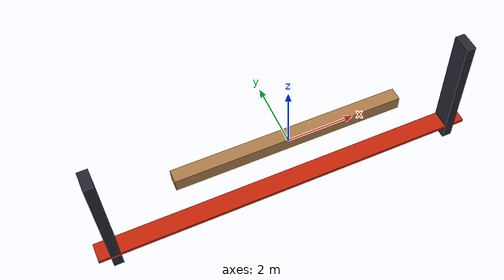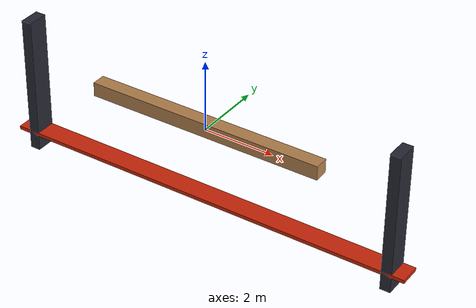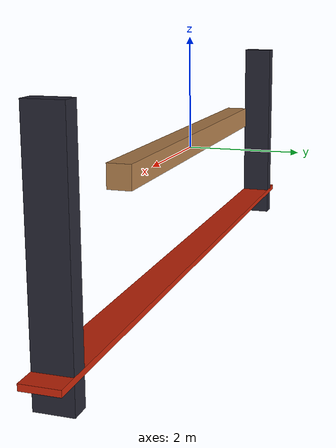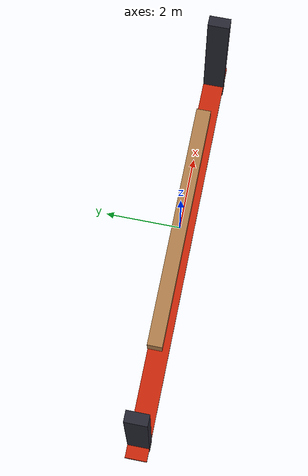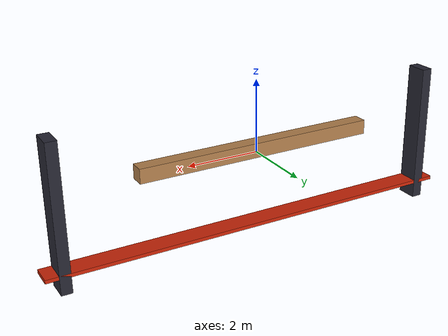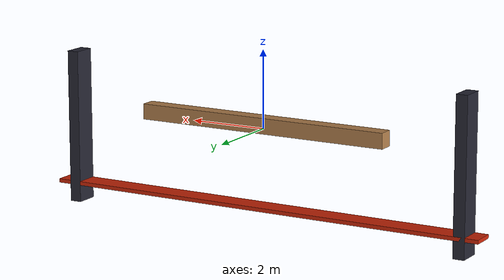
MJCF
<?xml version="1.0" encoding="UTF-8"?>
<mujoco model="unimal_sumo_env_2d_sf_clean">
  <compiler angle="radian"/>
  <option gravity="0 0 -9.81"/>

  <!-- =============== ASSETS =============== -->
  <asset>
    <!-- 2D-style sky: procedural gradient (no photo) -->
    <texture name="sky_2d" type="skybox"
             builtin="gradient" width="1024"
             rgb1="0.08 0.08 0.12"
             rgb2="0.18 0.18 0.28"
             mark="none"/>

    <!-- Stage wood (kept, but flattened via material) -->
    <texture  name="wood_tex" type="2d" file="assets/textures/wood/WoodFloor043.png"/>
    <material name="stage_floor" texture="wood_tex" texrepeat="10 1" texuniform="true"
              emission="0.05" specular="0" shininess="0" reflectance="0"/>

    <!-- Lava floor material (glowing orange/red) -->
    <texture name="lava_tex" type="2d" builtin="checker" width="64" height="64"
             rgb1="0.9 0.2 0.05" rgb2="0.7 0.1 0.02"/>
    <material name="lava_mat" texture="lava_tex" texrepeat="8 2" emission="0.8"
              specular="0" shininess="0" reflectance="0.1"/>

    <!-- Side walls material (dark, non-reflective) -->
    <material name="wall_mat" rgba="0.15 0.15 0.2 1.0" emission="0.02"
              specular="0" shininess="0" reflectance="0"/>

    <!-- Banner (self-lit) -->
    <texture  name="banner_tex" type="2d" file="assets/textures/fight_banner.png"/>
    <material name="banner_neon" texture="banner_tex" emission="1.35" specular="0" shininess="0"/>
  </asset>

  <!-- =============== VISUALS =============== -->
  <visual>
    <!-- Perspective free camera defaults (viewer free cam behaves like 3D arena) -->
    <global fovy="2.4"/>
    <!-- Flat lighting: no specular via headlight, slight ambient only -->
    <headlight ambient="0.45 0.45 0.45" diffuse="0 0 0" specular="0 0 0"/>
    <!-- No fog/haze; shallow clip range to avoid depth artifacts -->
    <map fogstart="100" fogend="101" znear="0.01" zfar="50" haze="0"/>
    <!-- Kill shadows & MSAA for a crisp sprite-like look -->
    <quality shadowsize="0" offsamples="0"/>
  </visual>

  <!-- =============== WORLD =============== -->
  <worldbody>

    <!-- Minimal fill lights (very soft, no directionality) -->
    <light name="fillL"  pos="-6 3 6" dir="0 -0.2 -1" diffuse="0.15 0.15 0.15" specular="0 0 0" directional="true"/>
    <light name="fillR"  pos=" 6 3 6" dir="0 -0.2 -1" diffuse="0.15 0.15 0.15" specular="0 0 0" directional="true"/>

    <body name="arena" pos="0 0 0">

      <!-- STAGE (platform) -->
      <geom name="sumo_ring" type="box" pos="0 0 0.12" size="3.40 0.20 0.20"
            material="stage_floor" friction="1.00 0.005 0.0001" condim="3" priority="1"/>

      <!-- LAVA FLOOR (below platform) - touching this ends the game -->
      <geom name="outside_floor" type="box" pos="0 0 -2.0" size="6.0 0.30 0.05"
            material="lava_mat" friction="0.5 0.01 0.001" condim="3" priority="1"/>

      <!-- SIDE WALLS (bouncy, don't end game) -->
      <!-- Left wall -->
      <geom name="wall_left" type="box" pos="-5.5 0 -0.5" size="0.15 0.30 2.0"
            material="wall_mat" friction="0.8 0.01 0.001" condim="3" priority="1"/>
      <!-- Right wall -->
      <geom name="wall_right" type="box" pos="5.5 0 -0.5" size="0.15 0.30 2.0"
            material="wall_mat" friction="0.8 0.01 0.001" condim="3" priority="1"/>

      <!-- Spawn markers -->
      <site name="spawn/left" pos="-1.5 0 0.2" size="0.001" rgba="0 0 0 0" type="sphere"/>
      <site name="spawn/right" pos=" 1.5 0 0.2" size="0.001" rgba="0 0 0 0" type="sphere"/>
      <!-- Cameras: side-on (zoomed out), perspective for consistent viewer behavior -->
      <camera name="side"
              pos="0 -14.0 0.0" xyaxes="1 0 0  0 0 1"
              mode="trackcom" fovy="45.0"/>
      <camera name="topdown"
              pos="0  0.0 12.00" quat="1 0 0 0"
              mode="trackcom" fovy="55.0"/>

    </body>
  </worldbody>
</mujoco>
